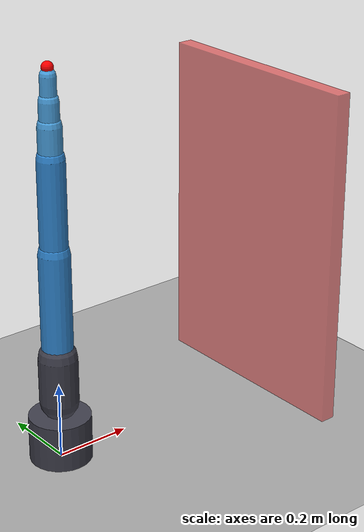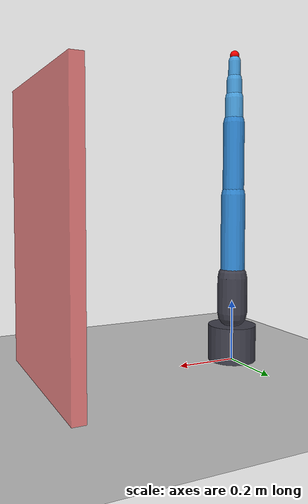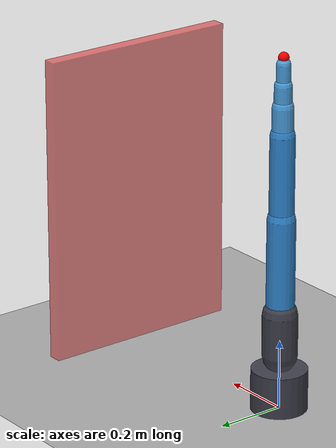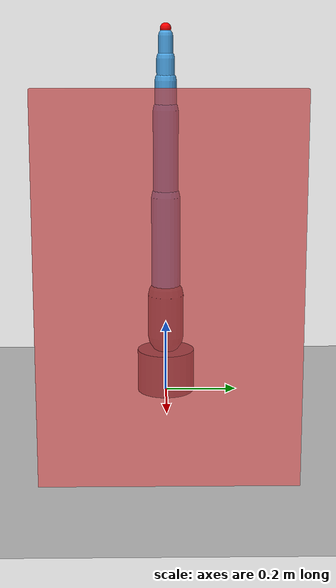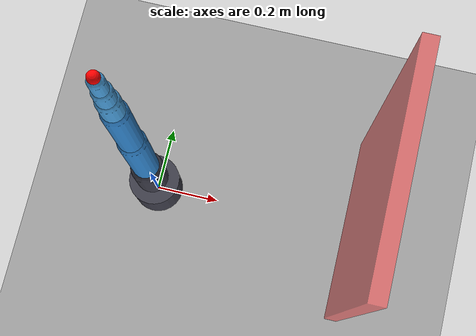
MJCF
<mujoco model="6dof_arm">
    <compiler angle="radian"/>

    <option timestep="0.002" gravity="0 0 -9.81"
            cone="pyramidal"
            impratio="5"
            tolerance="1e-6"
            ls_tolerance="1e-4"
            noslip_tolerance="1e-4">
        <flag contact="enable" energy="enable"/>
    </option>

    <default>
        <joint armature="0.005" damping="1.0" frictionloss="0.2"/>
        <!-- solref/solimp soften rigid contacts to reduce force jitter -->
        <geom contype="1" conaffinity="1"
              solref="0.02 1" solimp="0.9 0.95 0.001"/>
        <default class="base_link">
            <geom type="cylinder" rgba="0.25 0.25 0.3 1" size="0.06 0.06"/>
        </default>
        <default class="arm_link">
            <geom type="capsule" size="0.035" rgba="0.2 0.55 0.85 1"/>
        </default>
        <default class="wrist_link">
            <geom type="capsule" size="0.025" rgba="0.3 0.65 0.9 1"/>
        </default>
        <default class="wall">
            <geom type="box" rgba="0.9 0.3 0.3 0.7"/>
        </default>
    </default>

    <asset>
        <texture name="grid" type="2d" builtin="checker" width="512" height="512"
                 rgb1="0.15 0.15 0.15" rgb2="0.25 0.25 0.25"/>
        <material name="grid_mat" texture="grid" texrepeat="1 1" reflectance="0.05"/>
    </asset>

    <worldbody>
        <geom name="floor" type="plane" size="2 2 0.001" material="grid_mat"/>

        <!-- Wall for force-control demos -->
        <body name="wall" pos="0.65 0 0.4">
            <geom name="wall_surface" type="box" size="0.02 0.3 0.5" class="wall"/>
        </body>

        <!-- 6-DOF arm: Z-Y-Y-Z-Y-Z (UR5-style) -->
        <body name="base" pos="0 0 0.06">
            <geom name="base_geom" type="cylinder" size="0.08 0.06" class="base_link"/>

            <joint name="joint1" type="hinge" axis="0 0 1" range="-2.8 2.8"/>
            <body name="link1" pos="0 0 0.1">
                <geom name="link1_geom" type="capsule" size="0.05" fromto="0 0 0 0 0 0.12" class="base_link"/>

                <joint name="joint2" type="hinge" axis="0 1 0" range="-2.2 1.5"/>
                <body name="link2" pos="0 0 0.12">
                    <geom name="link2_geom" type="capsule" size="0.04" fromto="0 0 0 0 0 0.28" class="arm_link"/>

                    <joint name="joint3" type="hinge" axis="0 1 0" range="-2.8 1.5"/>
                    <body name="link3" pos="0 0 0.28">
                        <geom name="link3_geom" type="capsule" size="0.035" fromto="0 0 0 0 0 0.24" class="arm_link"/>

                        <joint name="joint4" type="hinge" axis="0 0 1" range="-3.14 3.14"/>
                        <body name="link4" pos="0 0 0.24">
                            <geom name="link4_geom" type="capsule" size="0.03" fromto="0 0 0 0 0 0.08" class="wrist_link"/>

                            <joint name="joint5" type="hinge" axis="0 1 0" range="-2.0 2.0"/>
                            <body name="link5" pos="0 0 0.08">
                                <geom name="link5_geom" type="capsule" size="0.025" fromto="0 0 0 0 0 0.06" class="wrist_link"/>

                                <joint name="joint6" type="hinge" axis="0 0 1" range="-6.28 6.28"/>
                                <body name="link6" pos="0 0 0.06">
                                    <geom name="link6_geom" type="capsule" size="0.02" fromto="0 0 -0.02 0 0 0.06" class="wrist_link"/>
                                    <site name="end_effector" pos="0 0 0.08" size="0.015" rgba="1 0 0 1"/>
                                </body>
                            </body>
                        </body>
                    </body>
                </body>
            </body>
        </body>

        <light name="light1" pos="1.5 1.5 2.5" dir="-0.5 -0.5 -1" diffuse="0.7 0.7 0.7"/>
        <light name="light2" pos="-1 1 0.5" dir="0.3 -0.3 -0.15" diffuse="0.3 0.3 0.3"/>
    </worldbody>

    <actuator>
        <motor name="motor1" joint="joint1" gear="1" ctrlrange="-80 80"/>
        <motor name="motor2" joint="joint2" gear="1" ctrlrange="-80 80"/>
        <motor name="motor3" joint="joint3" gear="1" ctrlrange="-80 80"/>
        <motor name="motor4" joint="joint4" gear="1" ctrlrange="-40 40"/>
        <motor name="motor5" joint="joint5" gear="1" ctrlrange="-40 40"/>
        <motor name="motor6" joint="joint6" gear="1" ctrlrange="-20 20"/>
    </actuator>

    <sensor>
        <jointpos name="pos1" joint="joint1"/>  <jointvel name="vel1" joint="joint1"/>
        <jointpos name="pos2" joint="joint2"/>  <jointvel name="vel2" joint="joint2"/>
        <jointpos name="pos3" joint="joint3"/>  <jointvel name="vel3" joint="joint3"/>
        <jointpos name="pos4" joint="joint4"/>  <jointvel name="vel4" joint="joint4"/>
        <jointpos name="pos5" joint="joint5"/>  <jointvel name="vel5" joint="joint5"/>
        <jointpos name="pos6" joint="joint6"/>  <jointvel name="vel6" joint="joint6"/>
        <force name="end_force" site="end_effector"/>
    </sensor>
</mujoco>
